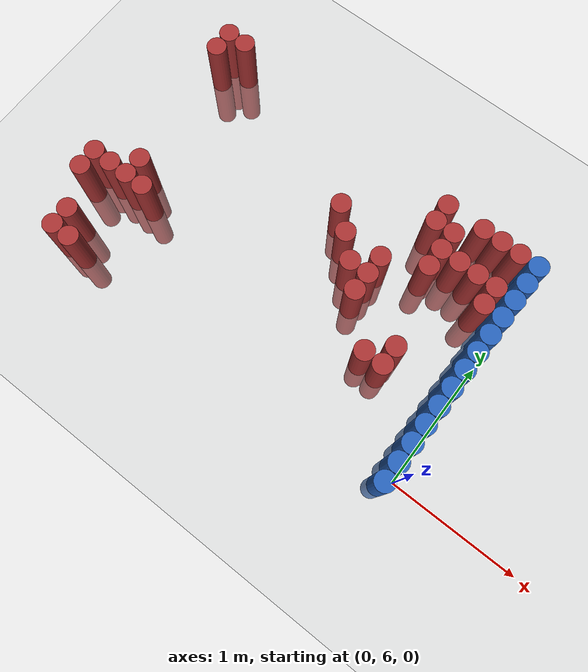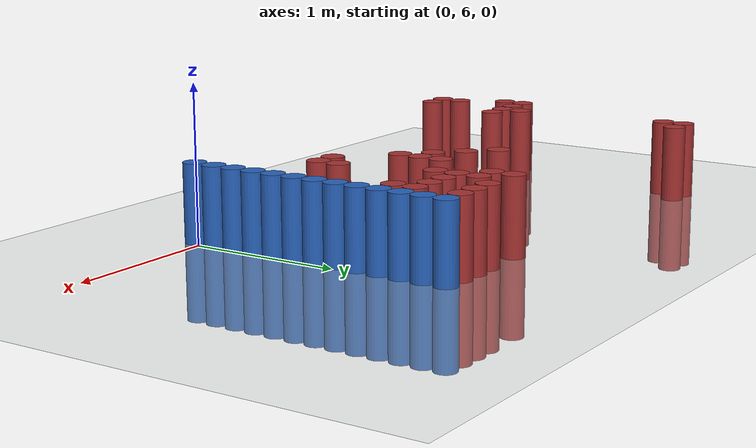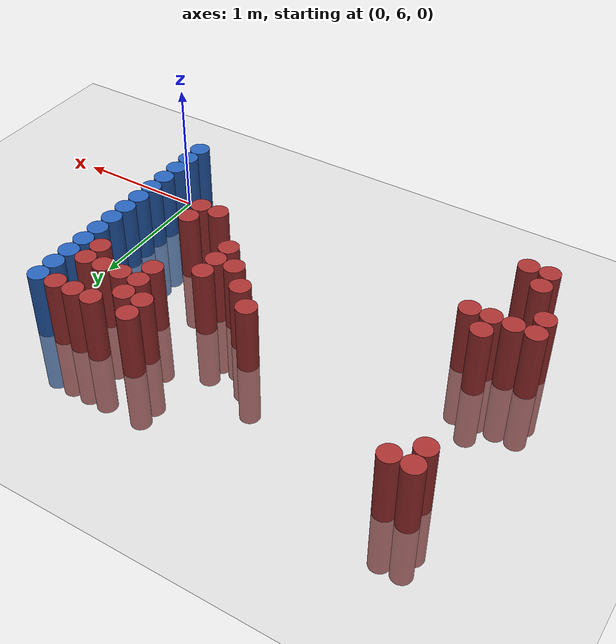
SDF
<sdf version="1.6">
 <world name="default">
  <model name="ground_plane">
   <static>1</static>
   <link name="link">
    <collision name="collision">
     <geometry><plane><normal>0 0 1</normal><size>100 100</size></plane></geometry>
     <surface><friction><ode><mu>100</mu><mu2>50</mu2></ode></friction></surface>
    </collision>
    <visual name="visual">
     <cast_shadows>0</cast_shadows>
     <geometry><plane><normal>0 0 1</normal><size>100 100</size></plane></geometry>
     <material>
      <script><uri>file://media/materials/scripts/gazebo.material</uri><name>Gazebo/Grey</name></script>
     </material>
    </visual>
   </link>
  </model>
  <model name="unit_cylinder_159">
   <static>1</static>
   <pose>-3.075000 6.375000 0.000000 0.000000 0.000000 0.000000</pose>
   <link name="link">
    <inertial>
     <mass>1</mass>
     <inertia><ixx>0.145833</ixx><ixy>0</ixy><ixz>0</ixz><iyy>0.145833</iyy><iyz>0</iyz><izz>0.125</izz></inertia>
    </inertial>
    <collision name="collision">
     <geometry><cylinder><radius>0.075000</radius><length>1</length></cylinder></geometry>
    </collision>
    <visual name="visual">
     <geometry><cylinder><radius>0.075000</radius><length>1</length></cylinder></geometry>
     <material>
      <ambient>0.648000 0.192000 0.192000 1</ambient>
      <diffuse>0.648000 0.192000 0.192000 1</diffuse>
     </material>
     <material>
      <script><name>Gazebo/Grey</name><uri>file://media/materials/scripts/gazebo.material</uri></script>
     </material>
    </visual>
   </link>
  </model>
  <model name="unit_cylinder_160">
   <static>1</static>
   <pose>-3.075000 6.525000 0.000000 0.000000 0.000000 0.000000</pose>
   <link name="link">
    <inertial>
     <mass>1</mass>
     <inertia><ixx>0.145833</ixx><ixy>0</ixy><ixz>0</ixz><iyy>0.145833</iyy><iyz>0</iyz><izz>0.125</izz></inertia>
    </inertial>
    <collision name="collision">
     <geometry><cylinder><radius>0.075000</radius><length>1</length></cylinder></geometry>
    </collision>
    <visual name="visual">
     <geometry><cylinder><radius>0.075000</radius><length>1</length></cylinder></geometry>
     <material>
      <ambient>0.648000 0.192000 0.192000 1</ambient>
      <diffuse>0.648000 0.192000 0.192000 1</diffuse>
     </material>
     <material>
      <script><name>Gazebo/Grey</name><uri>file://media/materials/scripts/gazebo.material</uri></script>
     </material>
    </visual>
   </link>
  </model>
  <model name="unit_cylinder_162">
   <static>1</static>
   <pose>-2.925000 5.925000 0.000000 0.000000 0.000000 0.000000</pose>
   <link name="link">
    <inertial>
     <mass>1</mass>
     <inertia><ixx>0.145833</ixx><ixy>0</ixy><ixz>0</ixz><iyy>0.145833</iyy><iyz>0</iyz><izz>0.125</izz></inertia>
    </inertial>
    <collision name="collision">
     <geometry><cylinder><radius>0.075000</radius><length>1</length></cylinder></geometry>
    </collision>
    <visual name="visual">
     <geometry><cylinder><radius>0.075000</radius><length>1</length></cylinder></geometry>
     <material>
      <ambient>0.648000 0.192000 0.192000 1</ambient>
      <diffuse>0.648000 0.192000 0.192000 1</diffuse>
     </material>
     <material>
      <script><name>Gazebo/Grey</name><uri>file://media/materials/scripts/gazebo.material</uri></script>
     </material>
    </visual>
   </link>
  </model>
  <model name="unit_cylinder_163">
   <static>1</static>
   <pose>-2.925000 6.075000 0.000000 0.000000 0.000000 0.000000</pose>
   <link name="link">
    <inertial>
     <mass>1</mass>
     <inertia><ixx>0.145833</ixx><ixy>0</ixy><ixz>0</ixz><iyy>0.145833</iyy><iyz>0</iyz><izz>0.125</izz></inertia>
    </inertial>
    <collision name="collision">
     <geometry><cylinder><radius>0.075000</radius><length>1</length></cylinder></geometry>
    </collision>
    <visual name="visual">
     <geometry><cylinder><radius>0.075000</radius><length>1</length></cylinder></geometry>
     <material>
      <ambient>0.648000 0.192000 0.192000 1</ambient>
      <diffuse>0.648000 0.192000 0.192000 1</diffuse>
     </material>
     <material>
      <script><name>Gazebo/Grey</name><uri>file://media/materials/scripts/gazebo.material</uri></script>
     </material>
    </visual>
   </link>
  </model>
  <model name="unit_cylinder_164">
   <static>1</static>
   <pose>-2.925000 6.525000 0.000000 0.000000 0.000000 0.000000</pose>
   <link name="link">
    <inertial>
     <mass>1</mass>
     <inertia><ixx>0.145833</ixx><ixy>0</ixy><ixz>0</ixz><iyy>0.145833</iyy><iyz>0</iyz><izz>0.125</izz></inertia>
    </inertial>
    <collision name="collision">
     <geometry><cylinder><radius>0.075000</radius><length>1</length></cylinder></geometry>
    </collision>
    <visual name="visual">
     <geometry><cylinder><radius>0.075000</radius><length>1</length></cylinder></geometry>
     <material>
      <ambient>0.648000 0.192000 0.192000 1</ambient>
      <diffuse>0.648000 0.192000 0.192000 1</diffuse>
     </material>
     <material>
      <script><name>Gazebo/Grey</name><uri>file://media/materials/scripts/gazebo.material</uri></script>
     </material>
    </visual>
   </link>
  </model>
  <model name="unit_cylinder_165">
   <static>1</static>
   <pose>-2.925000 7.725000 0.000000 0.000000 0.000000 0.000000</pose>
   <link name="link">
    <inertial>
     <mass>1</mass>
     <inertia><ixx>0.145833</ixx><ixy>0</ixy><ixz>0</ixz><iyy>0.145833</iyy><iyz>0</iyz><izz>0.125</izz></inertia>
    </inertial>
    <collision name="collision">
     <geometry><cylinder><radius>0.075000</radius><length>1</length></cylinder></geometry>
    </collision>
    <visual name="visual">
     <geometry><cylinder><radius>0.075000</radius><length>1</length></cylinder></geometry>
     <material>
      <ambient>0.648000 0.192000 0.192000 1</ambient>
      <diffuse>0.648000 0.192000 0.192000 1</diffuse>
     </material>
     <material>
      <script><name>Gazebo/Grey</name><uri>file://media/materials/scripts/gazebo.material</uri></script>
     </material>
    </visual>
   </link>
  </model>
  <model name="unit_cylinder_166">
   <static>1</static>
   <pose>-2.925000 7.875000 0.000000 0.000000 0.000000 0.000000</pose>
   <link name="link">
    <inertial>
     <mass>1</mass>
     <inertia><ixx>0.145833</ixx><ixy>0</ixy><ixz>0</ixz><iyy>0.145833</iyy><iyz>0</iyz><izz>0.125</izz></inertia>
    </inertial>
    <collision name="collision">
     <geometry><cylinder><radius>0.075000</radius><length>1</length></cylinder></geometry>
    </collision>
    <visual name="visual">
     <geometry><cylinder><radius>0.075000</radius><length>1</length></cylinder></geometry>
     <material>
      <ambient>0.648000 0.192000 0.192000 1</ambient>
      <diffuse>0.648000 0.192000 0.192000 1</diffuse>
     </material>
     <material>
      <script><name>Gazebo/Grey</name><uri>file://media/materials/scripts/gazebo.material</uri></script>
     </material>
    </visual>
   </link>
  </model>
  <model name="unit_cylinder_169">
   <static>1</static>
   <pose>-2.775000 5.925000 0.000000 0.000000 0.000000 0.000000</pose>
   <link name="link">
    <inertial>
     <mass>1</mass>
     <inertia><ixx>0.145833</ixx><ixy>0</ixy><ixz>0</ixz><iyy>0.145833</iyy><iyz>0</iyz><izz>0.125</izz></inertia>
    </inertial>
    <collision name="collision">
     <geometry><cylinder><radius>0.075000</radius><length>1</length></cylinder></geometry>
    </collision>
    <visual name="visual">
     <geometry><cylinder><radius>0.075000</radius><length>1</length></cylinder></geometry>
     <material>
      <ambient>0.648000 0.192000 0.192000 1</ambient>
      <diffuse>0.648000 0.192000 0.192000 1</diffuse>
     </material>
     <material>
      <script><name>Gazebo/Grey</name><uri>file://media/materials/scripts/gazebo.material</uri></script>
     </material>
    </visual>
   </link>
  </model>
  <model name="unit_cylinder_170">
   <static>1</static>
   <pose>-2.775000 6.525000 0.000000 0.000000 0.000000 0.000000</pose>
   <link name="link">
    <inertial>
     <mass>1</mass>
     <inertia><ixx>0.145833</ixx><ixy>0</ixy><ixz>0</ixz><iyy>0.145833</iyy><iyz>0</iyz><izz>0.125</izz></inertia>
    </inertial>
    <collision name="collision">
     <geometry><cylinder><radius>0.075000</radius><length>1</length></cylinder></geometry>
    </collision>
    <visual name="visual">
     <geometry><cylinder><radius>0.075000</radius><length>1</length></cylinder></geometry>
     <material>
      <ambient>0.648000 0.192000 0.192000 1</ambient>
      <diffuse>0.648000 0.192000 0.192000 1</diffuse>
     </material>
     <material>
      <script><name>Gazebo/Grey</name><uri>file://media/materials/scripts/gazebo.material</uri></script>
     </material>
    </visual>
   </link>
  </model>
  <model name="unit_cylinder_171">
   <static>1</static>
   <pose>-2.775000 6.675000 0.000000 0.000000 0.000000 0.000000</pose>
   <link name="link">
    <inertial>
     <mass>1</mass>
     <inertia><ixx>0.145833</ixx><ixy>0</ixy><ixz>0</ixz><iyy>0.145833</iyy><iyz>0</iyz><izz>0.125</izz></inertia>
    </inertial>
    <collision name="collision">
     <geometry><cylinder><radius>0.075000</radius><length>1</length></cylinder></geometry>
    </collision>
    <visual name="visual">
     <geometry><cylinder><radius>0.075000</radius><length>1</length></cylinder></geometry>
     <material>
      <ambient>0.648000 0.192000 0.192000 1</ambient>
      <diffuse>0.648000 0.192000 0.192000 1</diffuse>
     </material>
     <material>
      <script><name>Gazebo/Grey</name><uri>file://media/materials/scripts/gazebo.material</uri></script>
     </material>
    </visual>
   </link>
  </model>
  <model name="unit_cylinder_172">
   <static>1</static>
   <pose>-2.775000 7.875000 0.000000 0.000000 0.000000 0.000000</pose>
   <link name="link">
    <inertial>
     <mass>1</mass>
     <inertia><ixx>0.145833</ixx><ixy>0</ixy><ixz>0</ixz><iyy>0.145833</iyy><iyz>0</iyz><izz>0.125</izz></inertia>
    </inertial>
    <collision name="collision">
     <geometry><cylinder><radius>0.075000</radius><length>1</length></cylinder></geometry>
    </collision>
    <visual name="visual">
     <geometry><cylinder><radius>0.075000</radius><length>1</length></cylinder></geometry>
     <material>
      <ambient>0.648000 0.192000 0.192000 1</ambient>
      <diffuse>0.648000 0.192000 0.192000 1</diffuse>
     </material>
     <material>
      <script><name>Gazebo/Grey</name><uri>file://media/materials/scripts/gazebo.material</uri></script>
     </material>
    </visual>
   </link>
  </model>
  <model name="unit_cylinder_175">
   <static>1</static>
   <pose>-2.625000 6.525000 0.000000 0.000000 0.000000 0.000000</pose>
   <link name="link">
    <inertial>
     <mass>1</mass>
     <inertia><ixx>0.145833</ixx><ixy>0</ixy><ixz>0</ixz><iyy>0.145833</iyy><iyz>0</iyz><izz>0.125</izz></inertia>
    </inertial>
    <collision name="collision">
     <geometry><cylinder><radius>0.075000</radius><length>1</length></cylinder></geometry>
    </collision>
    <visual name="visual">
     <geometry><cylinder><radius>0.075000</radius><length>1</length></cylinder></geometry>
     <material>
      <ambient>0.648000 0.192000 0.192000 1</ambient>
      <diffuse>0.648000 0.192000 0.192000 1</diffuse>
     </material>
     <material>
      <script><name>Gazebo/Grey</name><uri>file://media/materials/scripts/gazebo.material</uri></script>
     </material>
    </visual>
   </link>
  </model>
  <model name="unit_cylinder_197">
   <static>1</static>
   <pose>-1.425000 7.275000 0.000000 0.000000 0.000000 0.000000</pose>
   <link name="link">
    <inertial>
     <mass>1</mass>
     <inertia><ixx>0.145833</ixx><ixy>0</ixy><ixz>0</ixz><iyy>0.145833</iyy><iyz>0</iyz><izz>0.125</izz></inertia>
    </inertial>
    <collision name="collision">
     <geometry><cylinder><radius>0.075000</radius><length>1</length></cylinder></geometry>
    </collision>
    <visual name="visual">
     <geometry><cylinder><radius>0.075000</radius><length>1</length></cylinder></geometry>
     <material>
      <ambient>0.648000 0.192000 0.192000 1</ambient>
      <diffuse>0.648000 0.192000 0.192000 1</diffuse>
     </material>
     <material>
      <script><name>Gazebo/Grey</name><uri>file://media/materials/scripts/gazebo.material</uri></script>
     </material>
    </visual>
   </link>
  </model>
  <model name="unit_cylinder_200">
   <static>1</static>
   <pose>-1.275000 7.125000 0.000000 0.000000 0.000000 0.000000</pose>
   <link name="link">
    <inertial>
     <mass>1</mass>
     <inertia><ixx>0.145833</ixx><ixy>0</ixy><ixz>0</ixz><iyy>0.145833</iyy><iyz>0</iyz><izz>0.125</izz></inertia>
    </inertial>
    <collision name="collision">
     <geometry><cylinder><radius>0.075000</radius><length>1</length></cylinder></geometry>
    </collision>
    <visual name="visual">
     <geometry><cylinder><radius>0.075000</radius><length>1</length></cylinder></geometry>
     <material>
      <ambient>0.648000 0.192000 0.192000 1</ambient>
      <diffuse>0.648000 0.192000 0.192000 1</diffuse>
     </material>
     <material>
      <script><name>Gazebo/Grey</name><uri>file://media/materials/scripts/gazebo.material</uri></script>
     </material>
    </visual>
   </link>
  </model>
  <model name="unit_cylinder_202">
   <static>1</static>
   <pose>-1.125000 6.975000 0.000000 0.000000 0.000000 0.000000</pose>
   <link name="link">
    <inertial>
     <mass>1</mass>
     <inertia><ixx>0.145833</ixx><ixy>0</ixy><ixz>0</ixz><iyy>0.145833</iyy><iyz>0</iyz><izz>0.125</izz></inertia>
    </inertial>
    <collision name="collision">
     <geometry><cylinder><radius>0.075000</radius><length>1</length></cylinder></geometry>
    </collision>
    <visual name="visual">
     <geometry><cylinder><radius>0.075000</radius><length>1</length></cylinder></geometry>
     <material>
      <ambient>0.648000 0.192000 0.192000 1</ambient>
      <diffuse>0.648000 0.192000 0.192000 1</diffuse>
     </material>
     <material>
      <script><name>Gazebo/Grey</name><uri>file://media/materials/scripts/gazebo.material</uri></script>
     </material>
    </visual>
   </link>
  </model>
  <model name="unit_cylinder_206">
   <static>1</static>
   <pose>-0.975000 6.825000 0.000000 0.000000 0.000000 0.000000</pose>
   <link name="link">
    <inertial>
     <mass>1</mass>
     <inertia><ixx>0.145833</ixx><ixy>0</ixy><ixz>0</ixz><iyy>0.145833</iyy><iyz>0</iyz><izz>0.125</izz></inertia>
    </inertial>
    <collision name="collision">
     <geometry><cylinder><radius>0.075000</radius><length>1</length></cylinder></geometry>
    </collision>
    <visual name="visual">
     <geometry><cylinder><radius>0.075000</radius><length>1</length></cylinder></geometry>
     <material>
      <ambient>0.648000 0.192000 0.192000 1</ambient>
      <diffuse>0.648000 0.192000 0.192000 1</diffuse>
     </material>
     <material>
      <script><name>Gazebo/Grey</name><uri>file://media/materials/scripts/gazebo.material</uri></script>
     </material>
    </visual>
   </link>
  </model>
  <model name="unit_cylinder_207">
   <static>1</static>
   <pose>-0.975000 6.975000 0.000000 0.000000 0.000000 0.000000</pose>
   <link name="link">
    <inertial>
     <mass>1</mass>
     <inertia><ixx>0.145833</ixx><ixy>0</ixy><ixz>0</ixz><iyy>0.145833</iyy><iyz>0</iyz><izz>0.125</izz></inertia>
    </inertial>
    <collision name="collision">
     <geometry><cylinder><radius>0.075000</radius><length>1</length></cylinder></geometry>
    </collision>
    <visual name="visual">
     <geometry><cylinder><radius>0.075000</radius><length>1</length></cylinder></geometry>
     <material>
      <ambient>0.648000 0.192000 0.192000 1</ambient>
      <diffuse>0.648000 0.192000 0.192000 1</diffuse>
     </material>
     <material>
      <script><name>Gazebo/Grey</name><uri>file://media/materials/scripts/gazebo.material</uri></script>
     </material>
    </visual>
   </link>
  </model>
  <model name="unit_cylinder_208">
   <static>1</static>
   <pose>-0.975000 7.125000 0.000000 0.000000 0.000000 0.000000</pose>
   <link name="link">
    <inertial>
     <mass>1</mass>
     <inertia><ixx>0.145833</ixx><ixy>0</ixy><ixz>0</ixz><iyy>0.145833</iyy><iyz>0</iyz><izz>0.125</izz></inertia>
    </inertial>
    <collision name="collision">
     <geometry><cylinder><radius>0.075000</radius><length>1</length></cylinder></geometry>
    </collision>
    <visual name="visual">
     <geometry><cylinder><radius>0.075000</radius><length>1</length></cylinder></geometry>
     <material>
      <ambient>0.648000 0.192000 0.192000 1</ambient>
      <diffuse>0.648000 0.192000 0.192000 1</diffuse>
     </material>
     <material>
      <script><name>Gazebo/Grey</name><uri>file://media/materials/scripts/gazebo.material</uri></script>
     </material>
    </visual>
   </link>
  </model>
  <model name="unit_cylinder_211">
   <static>1</static>
   <pose>-0.825000 7.575000 0.000000 0.000000 0.000000 0.000000</pose>
   <link name="link">
    <inertial>
     <mass>1</mass>
     <inertia><ixx>0.145833</ixx><ixy>0</ixy><ixz>0</ixz><iyy>0.145833</iyy><iyz>0</iyz><izz>0.125</izz></inertia>
    </inertial>
    <collision name="collision">
     <geometry><cylinder><radius>0.075000</radius><length>1</length></cylinder></geometry>
    </collision>
    <visual name="visual">
     <geometry><cylinder><radius>0.075000</radius><length>1</length></cylinder></geometry>
     <material>
      <ambient>0.648000 0.192000 0.192000 1</ambient>
      <diffuse>0.648000 0.192000 0.192000 1</diffuse>
     </material>
     <material>
      <script><name>Gazebo/Grey</name><uri>file://media/materials/scripts/gazebo.material</uri></script>
     </material>
    </visual>
   </link>
  </model>
  <model name="unit_cylinder_212">
   <static>1</static>
   <pose>-0.825000 7.725000 0.000000 0.000000 0.000000 0.000000</pose>
   <link name="link">
    <inertial>
     <mass>1</mass>
     <inertia><ixx>0.145833</ixx><ixy>0</ixy><ixz>0</ixz><iyy>0.145833</iyy><iyz>0</iyz><izz>0.125</izz></inertia>
    </inertial>
    <collision name="collision">
     <geometry><cylinder><radius>0.075000</radius><length>1</length></cylinder></geometry>
    </collision>
    <visual name="visual">
     <geometry><cylinder><radius>0.075000</radius><length>1</length></cylinder></geometry>
     <material>
      <ambient>0.648000 0.192000 0.192000 1</ambient>
      <diffuse>0.648000 0.192000 0.192000 1</diffuse>
     </material>
     <material>
      <script><name>Gazebo/Grey</name><uri>file://media/materials/scripts/gazebo.material</uri></script>
     </material>
    </visual>
   </link>
  </model>
  <model name="unit_cylinder_217">
   <static>1</static>
   <pose>-0.675000 6.525000 0.000000 0.000000 0.000000 0.000000</pose>
   <link name="link">
    <inertial>
     <mass>1</mass>
     <inertia><ixx>0.145833</ixx><ixy>0</ixy><ixz>0</ixz><iyy>0.145833</iyy><iyz>0</iyz><izz>0.125</izz></inertia>
    </inertial>
    <collision name="collision">
     <geometry><cylinder><radius>0.075000</radius><length>1</length></cylinder></geometry>
    </collision>
    <visual name="visual">
     <geometry><cylinder><radius>0.075000</radius><length>1</length></cylinder></geometry>
     <material>
      <ambient>0.648000 0.192000 0.192000 1</ambient>
      <diffuse>0.648000 0.192000 0.192000 1</diffuse>
     </material>
     <material>
      <script><name>Gazebo/Grey</name><uri>file://media/materials/scripts/gazebo.material</uri></script>
     </material>
    </visual>
   </link>
  </model>
  <model name="unit_cylinder_218">
   <static>1</static>
   <pose>-0.675000 7.275000 0.000000 0.000000 0.000000 0.000000</pose>
   <link name="link">
    <inertial>
     <mass>1</mass>
     <inertia><ixx>0.145833</ixx><ixy>0</ixy><ixz>0</ixz><iyy>0.145833</iyy><iyz>0</iyz><izz>0.125</izz></inertia>
    </inertial>
    <collision name="collision">
     <geometry><cylinder><radius>0.075000</radius><length>1</length></cylinder></geometry>
    </collision>
    <visual name="visual">
     <geometry><cylinder><radius>0.075000</radius><length>1</length></cylinder></geometry>
     <material>
      <ambient>0.648000 0.192000 0.192000 1</ambient>
      <diffuse>0.648000 0.192000 0.192000 1</diffuse>
     </material>
     <material>
      <script><name>Gazebo/Grey</name><uri>file://media/materials/scripts/gazebo.material</uri></script>
     </material>
    </visual>
   </link>
  </model>
  <model name="unit_cylinder_219">
   <static>1</static>
   <pose>-0.675000 7.425000 0.000000 0.000000 0.000000 0.000000</pose>
   <link name="link">
    <inertial>
     <mass>1</mass>
     <inertia><ixx>0.145833</ixx><ixy>0</ixy><ixz>0</ixz><iyy>0.145833</iyy><iyz>0</iyz><izz>0.125</izz></inertia>
    </inertial>
    <collision name="collision">
     <geometry><cylinder><radius>0.075000</radius><length>1</length></cylinder></geometry>
    </collision>
    <visual name="visual">
     <geometry><cylinder><radius>0.075000</radius><length>1</length></cylinder></geometry>
     <material>
      <ambient>0.648000 0.192000 0.192000 1</ambient>
      <diffuse>0.648000 0.192000 0.192000 1</diffuse>
     </material>
     <material>
      <script><name>Gazebo/Grey</name><uri>file://media/materials/scripts/gazebo.material</uri></script>
     </material>
    </visual>
   </link>
  </model>
  <model name="unit_cylinder_220">
   <static>1</static>
   <pose>-0.675000 7.575000 0.000000 0.000000 0.000000 0.000000</pose>
   <link name="link">
    <inertial>
     <mass>1</mass>
     <inertia><ixx>0.145833</ixx><ixy>0</ixy><ixz>0</ixz><iyy>0.145833</iyy><iyz>0</iyz><izz>0.125</izz></inertia>
    </inertial>
    <collision name="collision">
     <geometry><cylinder><radius>0.075000</radius><length>1</length></cylinder></geometry>
    </collision>
    <visual name="visual">
     <geometry><cylinder><radius>0.075000</radius><length>1</length></cylinder></geometry>
     <material>
      <ambient>0.648000 0.192000 0.192000 1</ambient>
      <diffuse>0.648000 0.192000 0.192000 1</diffuse>
     </material>
     <material>
      <script><name>Gazebo/Grey</name><uri>file://media/materials/scripts/gazebo.material</uri></script>
     </material>
    </visual>
   </link>
  </model>
  <model name="unit_cylinder_224">
   <static>1</static>
   <pose>-0.525000 6.525000 0.000000 0.000000 0.000000 0.000000</pose>
   <link name="link">
    <inertial>
     <mass>1</mass>
     <inertia><ixx>0.145833</ixx><ixy>0</ixy><ixz>0</ixz><iyy>0.145833</iyy><iyz>0</iyz><izz>0.125</izz></inertia>
    </inertial>
    <collision name="collision">
     <geometry><cylinder><radius>0.075000</radius><length>1</length></cylinder></geometry>
    </collision>
    <visual name="visual">
     <geometry><cylinder><radius>0.075000</radius><length>1</length></cylinder></geometry>
     <material>
      <ambient>0.648000 0.192000 0.192000 1</ambient>
      <diffuse>0.648000 0.192000 0.192000 1</diffuse>
     </material>
     <material>
      <script><name>Gazebo/Grey</name><uri>file://media/materials/scripts/gazebo.material</uri></script>
     </material>
    </visual>
   </link>
  </model>
  <model name="unit_cylinder_225">
   <static>1</static>
   <pose>-0.525000 6.675000 0.000000 0.000000 0.000000 0.000000</pose>
   <link name="link">
    <inertial>
     <mass>1</mass>
     <inertia><ixx>0.145833</ixx><ixy>0</ixy><ixz>0</ixz><iyy>0.145833</iyy><iyz>0</iyz><izz>0.125</izz></inertia>
    </inertial>
    <collision name="collision">
     <geometry><cylinder><radius>0.075000</radius><length>1</length></cylinder></geometry>
    </collision>
    <visual name="visual">
     <geometry><cylinder><radius>0.075000</radius><length>1</length></cylinder></geometry>
     <material>
      <ambient>0.648000 0.192000 0.192000 1</ambient>
      <diffuse>0.648000 0.192000 0.192000 1</diffuse>
     </material>
     <material>
      <script><name>Gazebo/Grey</name><uri>file://media/materials/scripts/gazebo.material</uri></script>
     </material>
    </visual>
   </link>
  </model>
  <model name="unit_cylinder_226">
   <static>1</static>
   <pose>-0.525000 7.425000 0.000000 0.000000 0.000000 0.000000</pose>
   <link name="link">
    <inertial>
     <mass>1</mass>
     <inertia><ixx>0.145833</ixx><ixy>0</ixy><ixz>0</ixz><iyy>0.145833</iyy><iyz>0</iyz><izz>0.125</izz></inertia>
    </inertial>
    <collision name="collision">
     <geometry><cylinder><radius>0.075000</radius><length>1</length></cylinder></geometry>
    </collision>
    <visual name="visual">
     <geometry><cylinder><radius>0.075000</radius><length>1</length></cylinder></geometry>
     <material>
      <ambient>0.648000 0.192000 0.192000 1</ambient>
      <diffuse>0.648000 0.192000 0.192000 1</diffuse>
     </material>
     <material>
      <script><name>Gazebo/Grey</name><uri>file://media/materials/scripts/gazebo.material</uri></script>
     </material>
    </visual>
   </link>
  </model>
  <model name="unit_cylinder_227">
   <static>1</static>
   <pose>-0.525000 7.725000 0.000000 0.000000 0.000000 0.000000</pose>
   <link name="link">
    <inertial>
     <mass>1</mass>
     <inertia><ixx>0.145833</ixx><ixy>0</ixy><ixz>0</ixz><iyy>0.145833</iyy><iyz>0</iyz><izz>0.125</izz></inertia>
    </inertial>
    <collision name="collision">
     <geometry><cylinder><radius>0.075000</radius><length>1</length></cylinder></geometry>
    </collision>
    <visual name="visual">
     <geometry><cylinder><radius>0.075000</radius><length>1</length></cylinder></geometry>
     <material>
      <ambient>0.648000 0.192000 0.192000 1</ambient>
      <diffuse>0.648000 0.192000 0.192000 1</diffuse>
     </material>
     <material>
      <script><name>Gazebo/Grey</name><uri>file://media/materials/scripts/gazebo.material</uri></script>
     </material>
    </visual>
   </link>
  </model>
  <model name="unit_cylinder_231">
   <static>1</static>
   <pose>-0.375000 7.425000 0.000000 0.000000 0.000000 0.000000</pose>
   <link name="link">
    <inertial>
     <mass>1</mass>
     <inertia><ixx>0.145833</ixx><ixy>0</ixy><ixz>0</ixz><iyy>0.145833</iyy><iyz>0</iyz><izz>0.125</izz></inertia>
    </inertial>
    <collision name="collision">
     <geometry><cylinder><radius>0.075000</radius><length>1</length></cylinder></geometry>
    </collision>
    <visual name="visual">
     <geometry><cylinder><radius>0.075000</radius><length>1</length></cylinder></geometry>
     <material>
      <ambient>0.648000 0.192000 0.192000 1</ambient>
      <diffuse>0.648000 0.192000 0.192000 1</diffuse>
     </material>
     <material>
      <script><name>Gazebo/Grey</name><uri>file://media/materials/scripts/gazebo.material</uri></script>
     </material>
    </visual>
   </link>
  </model>
  <model name="unit_cylinder_232">
   <static>1</static>
   <pose>-0.375000 7.725000 0.000000 0.000000 0.000000 0.000000</pose>
   <link name="link">
    <inertial>
     <mass>1</mass>
     <inertia><ixx>0.145833</ixx><ixy>0</ixy><ixz>0</ixz><iyy>0.145833</iyy><iyz>0</iyz><izz>0.125</izz></inertia>
    </inertial>
    <collision name="collision">
     <geometry><cylinder><radius>0.075000</radius><length>1</length></cylinder></geometry>
    </collision>
    <visual name="visual">
     <geometry><cylinder><radius>0.075000</radius><length>1</length></cylinder></geometry>
     <material>
      <ambient>0.648000 0.192000 0.192000 1</ambient>
      <diffuse>0.648000 0.192000 0.192000 1</diffuse>
     </material>
     <material>
      <script><name>Gazebo/Grey</name><uri>file://media/materials/scripts/gazebo.material</uri></script>
     </material>
    </visual>
   </link>
  </model>
  <model name="unit_cylinder_239">
   <static>1</static>
   <pose>-0.225000 7.275000 0.000000 0.000000 0.000000 0.000000</pose>
   <link name="link">
    <inertial>
     <mass>1</mass>
     <inertia><ixx>0.145833</ixx><ixy>0</ixy><ixz>0</ixz><iyy>0.145833</iyy><iyz>0</iyz><izz>0.125</izz></inertia>
    </inertial>
    <collision name="collision">
     <geometry><cylinder><radius>0.075000</radius><length>1</length></cylinder></geometry>
    </collision>
    <visual name="visual">
     <geometry><cylinder><radius>0.075000</radius><length>1</length></cylinder></geometry>
     <material>
      <ambient>0.648000 0.192000 0.192000 1</ambient>
      <diffuse>0.648000 0.192000 0.192000 1</diffuse>
     </material>
     <material>
      <script><name>Gazebo/Grey</name><uri>file://media/materials/scripts/gazebo.material</uri></script>
     </material>
    </visual>
   </link>
  </model>
  <model name="unit_cylinder_240">
   <static>1</static>
   <pose>-0.225000 7.425000 0.000000 0.000000 0.000000 0.000000</pose>
   <link name="link">
    <inertial>
     <mass>1</mass>
     <inertia><ixx>0.145833</ixx><ixy>0</ixy><ixz>0</ixz><iyy>0.145833</iyy><iyz>0</iyz><izz>0.125</izz></inertia>
    </inertial>
    <collision name="collision">
     <geometry><cylinder><radius>0.075000</radius><length>1</length></cylinder></geometry>
    </collision>
    <visual name="visual">
     <geometry><cylinder><radius>0.075000</radius><length>1</length></cylinder></geometry>
     <material>
      <ambient>0.648000 0.192000 0.192000 1</ambient>
      <diffuse>0.648000 0.192000 0.192000 1</diffuse>
     </material>
     <material>
      <script><name>Gazebo/Grey</name><uri>file://media/materials/scripts/gazebo.material</uri></script>
     </material>
    </visual>
   </link>
  </model>
  <model name="unit_cylinder_241">
   <static>1</static>
   <pose>-0.225000 7.725000 0.000000 0.000000 0.000000 0.000000</pose>
   <link name="link">
    <inertial>
     <mass>1</mass>
     <inertia><ixx>0.145833</ixx><ixy>0</ixy><ixz>0</ixz><iyy>0.145833</iyy><iyz>0</iyz><izz>0.125</izz></inertia>
    </inertial>
    <collision name="collision">
     <geometry><cylinder><radius>0.075000</radius><length>1</length></cylinder></geometry>
    </collision>
    <visual name="visual">
     <geometry><cylinder><radius>0.075000</radius><length>1</length></cylinder></geometry>
     <material>
      <ambient>0.648000 0.192000 0.192000 1</ambient>
      <diffuse>0.648000 0.192000 0.192000 1</diffuse>
     </material>
     <material>
      <script><name>Gazebo/Grey</name><uri>file://media/materials/scripts/gazebo.material</uri></script>
     </material>
    </visual>
   </link>
  </model>
  <model name="unit_cylinder_254">
   <static>1</static>
   <pose>-0.075000 5.925000 0.000000 0.000000 0.000000 0.000000</pose>
   <link name="link">
    <inertial>
     <mass>1</mass>
     <inertia><ixx>0.145833</ixx><ixy>0</ixy><ixz>0</ixz><iyy>0.145833</iyy><iyz>0</iyz><izz>0.125</izz></inertia>
    </inertial>
    <collision name="collision">
     <geometry><cylinder><radius>0.075000</radius><length>1</length></cylinder></geometry>
    </collision>
    <visual name="visual">
     <geometry><cylinder><radius>0.075000</radius><length>1</length></cylinder></geometry>
     <material>
      <ambient>0.152000 0.379000 0.720000 1</ambient>
      <diffuse>0.152000 0.379000 0.720000 1</diffuse>
     </material>
     <material>
      <script><name>Gazebo/Grey</name><uri>file://media/materials/scripts/gazebo.material</uri></script>
     </material>
    </visual>
   </link>
  </model>
  <model name="unit_cylinder_255">
   <static>1</static>
   <pose>-0.075000 6.075000 0.000000 0.000000 0.000000 0.000000</pose>
   <link name="link">
    <inertial>
     <mass>1</mass>
     <inertia><ixx>0.145833</ixx><ixy>0</ixy><ixz>0</ixz><iyy>0.145833</iyy><iyz>0</iyz><izz>0.125</izz></inertia>
    </inertial>
    <collision name="collision">
     <geometry><cylinder><radius>0.075000</radius><length>1</length></cylinder></geometry>
    </collision>
    <visual name="visual">
     <geometry><cylinder><radius>0.075000</radius><length>1</length></cylinder></geometry>
     <material>
      <ambient>0.152000 0.379000 0.720000 1</ambient>
      <diffuse>0.152000 0.379000 0.720000 1</diffuse>
     </material>
     <material>
      <script><name>Gazebo/Grey</name><uri>file://media/materials/scripts/gazebo.material</uri></script>
     </material>
    </visual>
   </link>
  </model>
  <model name="unit_cylinder_256">
   <static>1</static>
   <pose>-0.075000 6.225000 0.000000 0.000000 0.000000 0.000000</pose>
   <link name="link">
    <inertial>
     <mass>1</mass>
     <inertia><ixx>0.145833</ixx><ixy>0</ixy><ixz>0</ixz><iyy>0.145833</iyy><iyz>0</iyz><izz>0.125</izz></inertia>
    </inertial>
    <collision name="collision">
     <geometry><cylinder><radius>0.075000</radius><length>1</length></cylinder></geometry>
    </collision>
    <visual name="visual">
     <geometry><cylinder><radius>0.075000</radius><length>1</length></cylinder></geometry>
     <material>
      <ambient>0.152000 0.379000 0.720000 1</ambient>
      <diffuse>0.152000 0.379000 0.720000 1</diffuse>
     </material>
     <material>
      <script><name>Gazebo/Grey</name><uri>file://media/materials/scripts/gazebo.material</uri></script>
     </material>
    </visual>
   </link>
  </model>
  <model name="unit_cylinder_257">
   <static>1</static>
   <pose>-0.075000 6.375000 0.000000 0.000000 0.000000 0.000000</pose>
   <link name="link">
    <inertial>
     <mass>1</mass>
     <inertia><ixx>0.145833</ixx><ixy>0</ixy><ixz>0</ixz><iyy>0.145833</iyy><iyz>0</iyz><izz>0.125</izz></inertia>
    </inertial>
    <collision name="collision">
     <geometry><cylinder><radius>0.075000</radius><length>1</length></cylinder></geometry>
    </collision>
    <visual name="visual">
     <geometry><cylinder><radius>0.075000</radius><length>1</length></cylinder></geometry>
     <material>
      <ambient>0.152000 0.379000 0.720000 1</ambient>
      <diffuse>0.152000 0.379000 0.720000 1</diffuse>
     </material>
     <material>
      <script><name>Gazebo/Grey</name><uri>file://media/materials/scripts/gazebo.material</uri></script>
     </material>
    </visual>
   </link>
  </model>
  <model name="unit_cylinder_258">
   <static>1</static>
   <pose>-0.075000 6.525000 0.000000 0.000000 0.000000 0.000000</pose>
   <link name="link">
    <inertial>
     <mass>1</mass>
     <inertia><ixx>0.145833</ixx><ixy>0</ixy><ixz>0</ixz><iyy>0.145833</iyy><iyz>0</iyz><izz>0.125</izz></inertia>
    </inertial>
    <collision name="collision">
     <geometry><cylinder><radius>0.075000</radius><length>1</length></cylinder></geometry>
    </collision>
    <visual name="visual">
     <geometry><cylinder><radius>0.075000</radius><length>1</length></cylinder></geometry>
     <material>
      <ambient>0.152000 0.379000 0.720000 1</ambient>
      <diffuse>0.152000 0.379000 0.720000 1</diffuse>
     </material>
     <material>
      <script><name>Gazebo/Grey</name><uri>file://media/materials/scripts/gazebo.material</uri></script>
     </material>
    </visual>
   </link>
  </model>
  <model name="unit_cylinder_259">
   <static>1</static>
   <pose>-0.075000 6.675000 0.000000 0.000000 0.000000 0.000000</pose>
   <link name="link">
    <inertial>
     <mass>1</mass>
     <inertia><ixx>0.145833</ixx><ixy>0</ixy><ixz>0</ixz><iyy>0.145833</iyy><iyz>0</iyz><izz>0.125</izz></inertia>
    </inertial>
    <collision name="collision">
     <geometry><cylinder><radius>0.075000</radius><length>1</length></cylinder></geometry>
    </collision>
    <visual name="visual">
     <geometry><cylinder><radius>0.075000</radius><length>1</length></cylinder></geometry>
     <material>
      <ambient>0.152000 0.379000 0.720000 1</ambient>
      <diffuse>0.152000 0.379000 0.720000 1</diffuse>
     </material>
     <material>
      <script><name>Gazebo/Grey</name><uri>file://media/materials/scripts/gazebo.material</uri></script>
     </material>
    </visual>
   </link>
  </model>
  <model name="unit_cylinder_260">
   <static>1</static>
   <pose>-0.075000 6.825000 0.000000 0.000000 0.000000 0.000000</pose>
   <link name="link">
    <inertial>
     <mass>1</mass>
     <inertia><ixx>0.145833</ixx><ixy>0</ixy><ixz>0</ixz><iyy>0.145833</iyy><iyz>0</iyz><izz>0.125</izz></inertia>
    </inertial>
    <collision name="collision">
     <geometry><cylinder><radius>0.075000</radius><length>1</length></cylinder></geometry>
    </collision>
    <visual name="visual">
     <geometry><cylinder><radius>0.075000</radius><length>1</length></cylinder></geometry>
     <material>
      <ambient>0.152000 0.379000 0.720000 1</ambient>
      <diffuse>0.152000 0.379000 0.720000 1</diffuse>
     </material>
     <material>
      <script><name>Gazebo/Grey</name><uri>file://media/materials/scripts/gazebo.material</uri></script>
     </material>
    </visual>
   </link>
  </model>
  <model name="unit_cylinder_261">
   <static>1</static>
   <pose>-0.075000 6.975000 0.000000 0.000000 0.000000 0.000000</pose>
   <link name="link">
    <inertial>
     <mass>1</mass>
     <inertia><ixx>0.145833</ixx><ixy>0</ixy><ixz>0</ixz><iyy>0.145833</iyy><iyz>0</iyz><izz>0.125</izz></inertia>
    </inertial>
    <collision name="collision">
     <geometry><cylinder><radius>0.075000</radius><length>1</length></cylinder></geometry>
    </collision>
    <visual name="visual">
     <geometry><cylinder><radius>0.075000</radius><length>1</length></cylinder></geometry>
     <material>
      <ambient>0.152000 0.379000 0.720000 1</ambient>
      <diffuse>0.152000 0.379000 0.720000 1</diffuse>
     </material>
     <material>
      <script><name>Gazebo/Grey</name><uri>file://media/materials/scripts/gazebo.material</uri></script>
     </material>
    </visual>
   </link>
  </model>
  <model name="unit_cylinder_262">
   <static>1</static>
   <pose>-0.075000 7.125000 0.000000 0.000000 0.000000 0.000000</pose>
   <link name="link">
    <inertial>
     <mass>1</mass>
     <inertia><ixx>0.145833</ixx><ixy>0</ixy><ixz>0</ixz><iyy>0.145833</iyy><iyz>0</iyz><izz>0.125</izz></inertia>
    </inertial>
    <collision name="collision">
     <geometry><cylinder><radius>0.075000</radius><length>1</length></cylinder></geometry>
    </collision>
    <visual name="visual">
     <geometry><cylinder><radius>0.075000</radius><length>1</length></cylinder></geometry>
     <material>
      <ambient>0.152000 0.379000 0.720000 1</ambient>
      <diffuse>0.152000 0.379000 0.720000 1</diffuse>
     </material>
     <material>
      <script><name>Gazebo/Grey</name><uri>file://media/materials/scripts/gazebo.material</uri></script>
     </material>
    </visual>
   </link>
  </model>
  <model name="unit_cylinder_263">
   <static>1</static>
   <pose>-0.075000 7.275000 0.000000 0.000000 0.000000 0.000000</pose>
   <link name="link">
    <inertial>
     <mass>1</mass>
     <inertia><ixx>0.145833</ixx><ixy>0</ixy><ixz>0</ixz><iyy>0.145833</iyy><iyz>0</iyz><izz>0.125</izz></inertia>
    </inertial>
    <collision name="collision">
     <geometry><cylinder><radius>0.075000</radius><length>1</length></cylinder></geometry>
    </collision>
    <visual name="visual">
     <geometry><cylinder><radius>0.075000</radius><length>1</length></cylinder></geometry>
     <material>
      <ambient>0.152000 0.379000 0.720000 1</ambient>
      <diffuse>0.152000 0.379000 0.720000 1</diffuse>
     </material>
     <material>
      <script><name>Gazebo/Grey</name><uri>file://media/materials/scripts/gazebo.material</uri></script>
     </material>
    </visual>
   </link>
  </model>
  <model name="unit_cylinder_264">
   <static>1</static>
   <pose>-0.075000 7.425000 0.000000 0.000000 0.000000 0.000000</pose>
   <link name="link">
    <inertial>
     <mass>1</mass>
     <inertia><ixx>0.145833</ixx><ixy>0</ixy><ixz>0</ixz><iyy>0.145833</iyy><iyz>0</iyz><izz>0.125</izz></inertia>
    </inertial>
    <collision name="collision">
     <geometry><cylinder><radius>0.075000</radius><length>1</length></cylinder></geometry>
    </collision>
    <visual name="visual">
     <geometry><cylinder><radius>0.075000</radius><length>1</length></cylinder></geometry>
     <material>
      <ambient>0.152000 0.379000 0.720000 1</ambient>
      <diffuse>0.152000 0.379000 0.720000 1</diffuse>
     </material>
     <material>
      <script><name>Gazebo/Grey</name><uri>file://media/materials/scripts/gazebo.material</uri></script>
     </material>
    </visual>
   </link>
  </model>
  <model name="unit_cylinder_265">
   <static>1</static>
   <pose>-0.075000 7.575000 0.000000 0.000000 0.000000 0.000000</pose>
   <link name="link">
    <inertial>
     <mass>1</mass>
     <inertia><ixx>0.145833</ixx><ixy>0</ixy><ixz>0</ixz><iyy>0.145833</iyy><iyz>0</iyz><izz>0.125</izz></inertia>
    </inertial>
    <collision name="collision">
     <geometry><cylinder><radius>0.075000</radius><length>1</length></cylinder></geometry>
    </collision>
    <visual name="visual">
     <geometry><cylinder><radius>0.075000</radius><length>1</length></cylinder></geometry>
     <material>
      <ambient>0.152000 0.379000 0.720000 1</ambient>
      <diffuse>0.152000 0.379000 0.720000 1</diffuse>
     </material>
     <material>
      <script><name>Gazebo/Grey</name><uri>file://media/materials/scripts/gazebo.material</uri></script>
     </material>
    </visual>
   </link>
  </model>
  <model name="unit_cylinder_266">
   <static>1</static>
   <pose>-0.075000 7.725000 0.000000 0.000000 0.000000 0.000000</pose>
   <link name="link">
    <inertial>
     <mass>1</mass>
     <inertia><ixx>0.145833</ixx><ixy>0</ixy><ixz>0</ixz><iyy>0.145833</iyy><iyz>0</iyz><izz>0.125</izz></inertia>
    </inertial>
    <collision name="collision">
     <geometry><cylinder><radius>0.075000</radius><length>1</length></cylinder></geometry>
    </collision>
    <visual name="visual">
     <geometry><cylinder><radius>0.075000</radius><length>1</length></cylinder></geometry>
     <material>
      <ambient>0.152000 0.379000 0.720000 1</ambient>
      <diffuse>0.152000 0.379000 0.720000 1</diffuse>
     </material>
     <material>
      <script><name>Gazebo/Grey</name><uri>file://media/materials/scripts/gazebo.material</uri></script>
     </material>
    </visual>
   </link>
  </model>
 </world>
</sdf>
